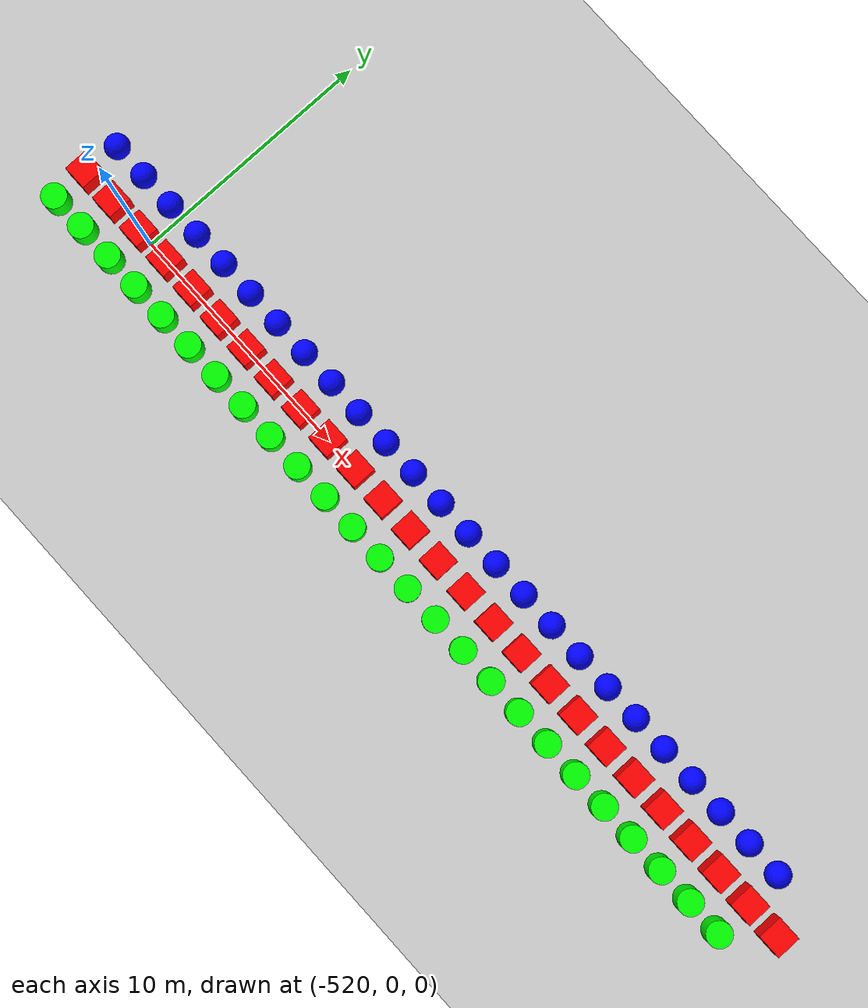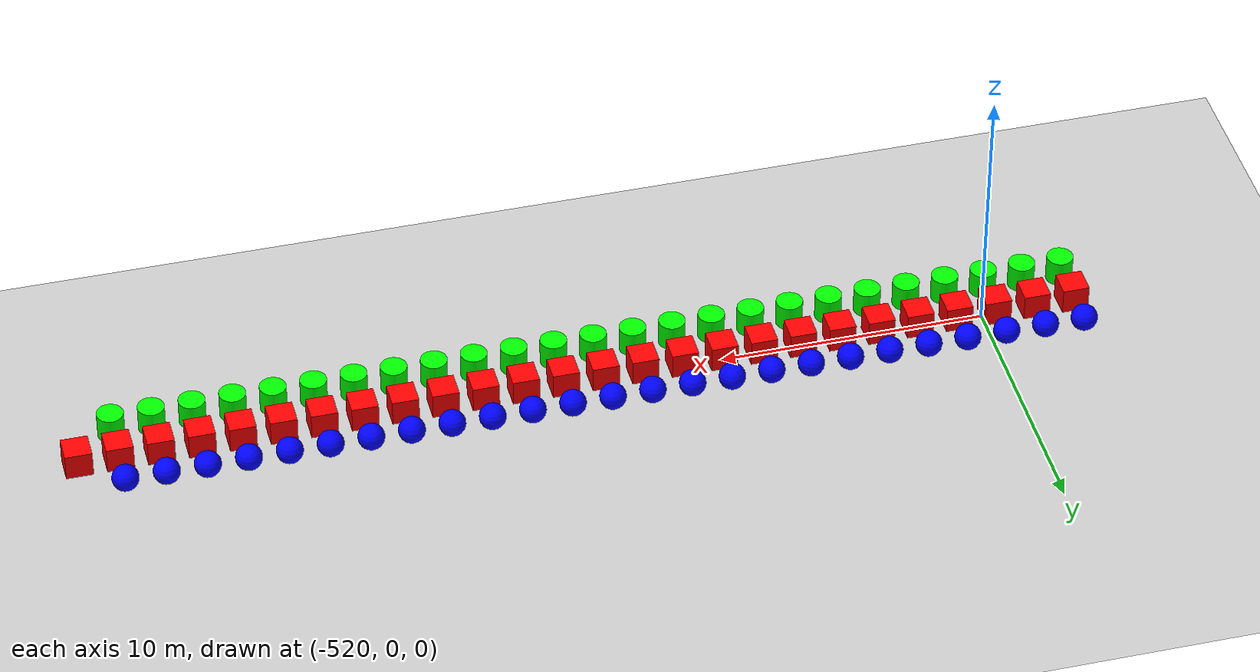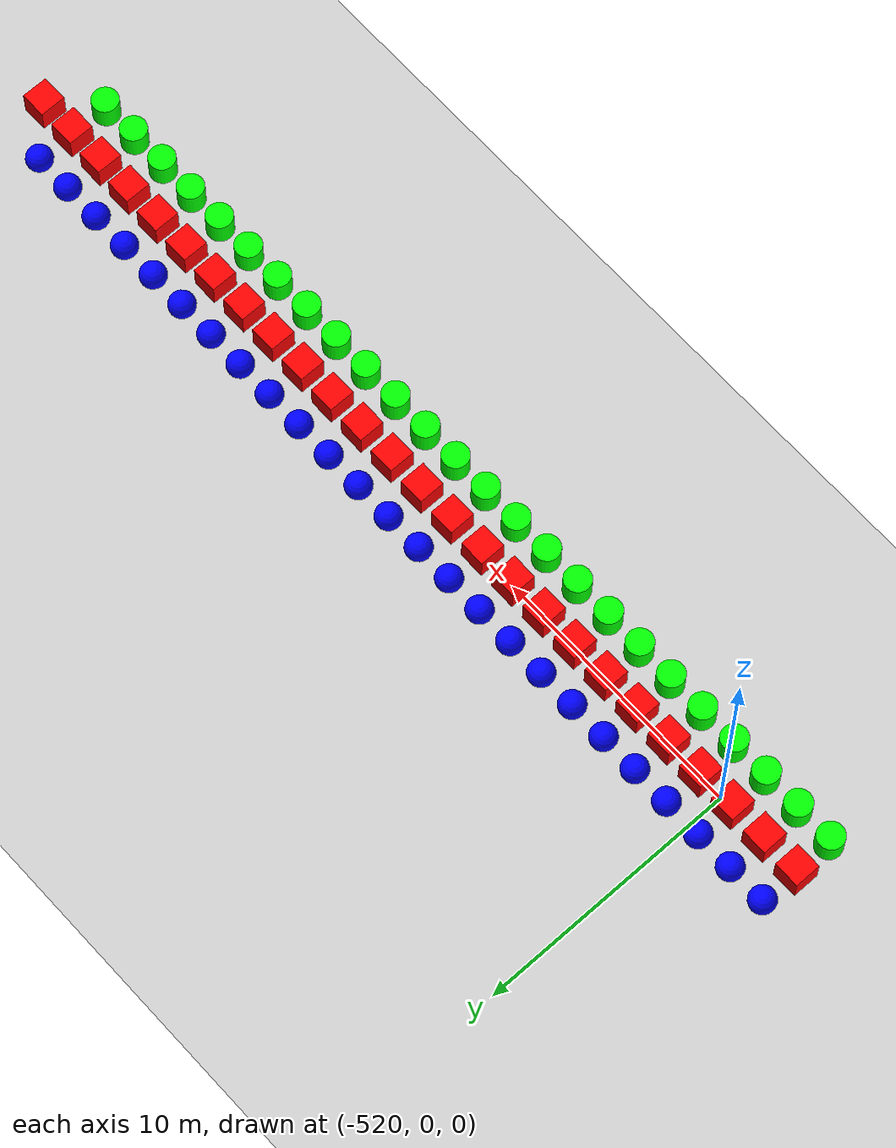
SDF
<sdf version="1.6">
 <world name="shapes">
  <model name="ground_plane">
   <static>true</static>
   <link name="link">
    <collision name="collision">
     <geometry><plane><normal>0 0 1</normal><size>100 100</size></plane></geometry>
    </collision>
    <visual name="visual">
     <geometry><plane><normal>0 0 1</normal><size>100 100</size></plane></geometry>
     <material>
      <ambient>0.8 0.8 0.8 1</ambient>
      <diffuse>0.8 0.8 0.8 1</diffuse>
      <specular>0.8 0.8 0.8 1</specular>
     </material>
    </visual>
   </link>
  </model>
  <model name="box_151">
   <pose>-523.5 0 0.5 0 0 0</pose>
   <link name="box_link">
    <inertial>
     <inertia><ixx>1</ixx><ixy>0</ixy><ixz>0</ixz><iyy>1</iyy><iyz>0</iyz><izz>1</izz></inertia>
     <mass>1.0</mass>
    </inertial>
    <collision name="box_collision"><geometry><box><size>1 1 1</size></box></geometry></collision>
    <visual name="box_visual">
     <geometry><box><size>1 1 1</size></box></geometry>
     <material><ambient>1 0 0 1</ambient><diffuse>1 0 0 1</diffuse><specular>1 0 0 1</specular></material>
    </visual>
   </link>
  </model>
  <model name="cylinder_151">
   <pose>-523.5 -1.5 0.5 0 0 0</pose>
   <link name="cylinder_link">
    <inertial>
     <inertia><ixx>2</ixx><ixy>0</ixy><ixz>0</ixz><iyy>2</iyy><iyz>0</iyz><izz>2</izz></inertia>
     <mass>2.0</mass>
    </inertial>
    <collision name="cylinder_collision">
     <geometry><cylinder><radius>0.5</radius><length>1.0</length></cylinder></geometry>
    </collision>
    <visual name="cylinder_visual">
     <geometry><cylinder><radius>0.5</radius><length>1.0</length></cylinder></geometry>
     <material><ambient>0 1 0 1</ambient><diffuse>0 1 0 1</diffuse><specular>0 1 0 1</specular></material>
    </visual>
   </link>
  </model>
  <model name="sphere_151">
   <pose>-523.5 1.5 0.5 0 0 0</pose>
   <link name="sphere_link">
    <inertial>
     <inertia><ixx>3</ixx><ixy>0</ixy><ixz>0</ixz><iyy>3</iyy><iyz>0</iyz><izz>3</izz></inertia>
     <mass>3.0</mass>
    </inertial>
    <collision name="sphere_collision"><geometry><sphere><radius>0.5</radius></sphere></geometry></collision>
    <visual name="sphere_visual">
     <geometry><sphere><radius>0.5</radius></sphere></geometry>
     <material><ambient>0 0 1 1</ambient><diffuse>0 0 1 1</diffuse><specular>0 0 1 1</specular></material>
    </visual>
   </link>
  </model>
  <model name="box_152">
   <pose>-522.0 0 0.5 0 0 0</pose>
   <link name="box_link">
    <inertial>
     <inertia><ixx>1</ixx><ixy>0</ixy><ixz>0</ixz><iyy>1</iyy><iyz>0</iyz><izz>1</izz></inertia>
     <mass>1.0</mass>
    </inertial>
    <collision name="box_collision"><geometry><box><size>1 1 1</size></box></geometry></collision>
    <visual name="box_visual">
     <geometry><box><size>1 1 1</size></box></geometry>
     <material><ambient>1 0 0 1</ambient><diffuse>1 0 0 1</diffuse><specular>1 0 0 1</specular></material>
    </visual>
   </link>
  </model>
  <model name="cylinder_152">
   <pose>-522.0 -1.5 0.5 0 0 0</pose>
   <link name="cylinder_link">
    <inertial>
     <inertia><ixx>2</ixx><ixy>0</ixy><ixz>0</ixz><iyy>2</iyy><iyz>0</iyz><izz>2</izz></inertia>
     <mass>2.0</mass>
    </inertial>
    <collision name="cylinder_collision">
     <geometry><cylinder><radius>0.5</radius><length>1.0</length></cylinder></geometry>
    </collision>
    <visual name="cylinder_visual">
     <geometry><cylinder><radius>0.5</radius><length>1.0</length></cylinder></geometry>
     <material><ambient>0 1 0 1</ambient><diffuse>0 1 0 1</diffuse><specular>0 1 0 1</specular></material>
    </visual>
   </link>
  </model>
  <model name="sphere_152">
   <pose>-522.0 1.5 0.5 0 0 0</pose>
   <link name="sphere_link">
    <inertial>
     <inertia><ixx>3</ixx><ixy>0</ixy><ixz>0</ixz><iyy>3</iyy><iyz>0</iyz><izz>3</izz></inertia>
     <mass>3.0</mass>
    </inertial>
    <collision name="sphere_collision"><geometry><sphere><radius>0.5</radius></sphere></geometry></collision>
    <visual name="sphere_visual">
     <geometry><sphere><radius>0.5</radius></sphere></geometry>
     <material><ambient>0 0 1 1</ambient><diffuse>0 0 1 1</diffuse><specular>0 0 1 1</specular></material>
    </visual>
   </link>
  </model>
  <model name="box_153">
   <pose>-520.5 0 0.5 0 0 0</pose>
   <link name="box_link">
    <inertial>
     <inertia><ixx>1</ixx><ixy>0</ixy><ixz>0</ixz><iyy>1</iyy><iyz>0</iyz><izz>1</izz></inertia>
     <mass>1.0</mass>
    </inertial>
    <collision name="box_collision"><geometry><box><size>1 1 1</size></box></geometry></collision>
    <visual name="box_visual">
     <geometry><box><size>1 1 1</size></box></geometry>
     <material><ambient>1 0 0 1</ambient><diffuse>1 0 0 1</diffuse><specular>1 0 0 1</specular></material>
    </visual>
   </link>
  </model>
  <model name="cylinder_153">
   <pose>-520.5 -1.5 0.5 0 0 0</pose>
   <link name="cylinder_link">
    <inertial>
     <inertia><ixx>2</ixx><ixy>0</ixy><ixz>0</ixz><iyy>2</iyy><iyz>0</iyz><izz>2</izz></inertia>
     <mass>2.0</mass>
    </inertial>
    <collision name="cylinder_collision">
     <geometry><cylinder><radius>0.5</radius><length>1.0</length></cylinder></geometry>
    </collision>
    <visual name="cylinder_visual">
     <geometry><cylinder><radius>0.5</radius><length>1.0</length></cylinder></geometry>
     <material><ambient>0 1 0 1</ambient><diffuse>0 1 0 1</diffuse><specular>0 1 0 1</specular></material>
    </visual>
   </link>
  </model>
  <model name="sphere_153">
   <pose>-520.5 1.5 0.5 0 0 0</pose>
   <link name="sphere_link">
    <inertial>
     <inertia><ixx>3</ixx><ixy>0</ixy><ixz>0</ixz><iyy>3</iyy><iyz>0</iyz><izz>3</izz></inertia>
     <mass>3.0</mass>
    </inertial>
    <collision name="sphere_collision"><geometry><sphere><radius>0.5</radius></sphere></geometry></collision>
    <visual name="sphere_visual">
     <geometry><sphere><radius>0.5</radius></sphere></geometry>
     <material><ambient>0 0 1 1</ambient><diffuse>0 0 1 1</diffuse><specular>0 0 1 1</specular></material>
    </visual>
   </link>
  </model>
  <model name="box_154">
   <pose>-519.0 0 0.5 0 0 0</pose>
   <link name="box_link">
    <inertial>
     <inertia><ixx>1</ixx><ixy>0</ixy><ixz>0</ixz><iyy>1</iyy><iyz>0</iyz><izz>1</izz></inertia>
     <mass>1.0</mass>
    </inertial>
    <collision name="box_collision"><geometry><box><size>1 1 1</size></box></geometry></collision>
    <visual name="box_visual">
     <geometry><box><size>1 1 1</size></box></geometry>
     <material><ambient>1 0 0 1</ambient><diffuse>1 0 0 1</diffuse><specular>1 0 0 1</specular></material>
    </visual>
   </link>
  </model>
  <model name="cylinder_154">
   <pose>-519.0 -1.5 0.5 0 0 0</pose>
   <link name="cylinder_link">
    <inertial>
     <inertia><ixx>2</ixx><ixy>0</ixy><ixz>0</ixz><iyy>2</iyy><iyz>0</iyz><izz>2</izz></inertia>
     <mass>2.0</mass>
    </inertial>
    <collision name="cylinder_collision">
     <geometry><cylinder><radius>0.5</radius><length>1.0</length></cylinder></geometry>
    </collision>
    <visual name="cylinder_visual">
     <geometry><cylinder><radius>0.5</radius><length>1.0</length></cylinder></geometry>
     <material><ambient>0 1 0 1</ambient><diffuse>0 1 0 1</diffuse><specular>0 1 0 1</specular></material>
    </visual>
   </link>
  </model>
  <model name="sphere_154">
   <pose>-519.0 1.5 0.5 0 0 0</pose>
   <link name="sphere_link">
    <inertial>
     <inertia><ixx>3</ixx><ixy>0</ixy><ixz>0</ixz><iyy>3</iyy><iyz>0</iyz><izz>3</izz></inertia>
     <mass>3.0</mass>
    </inertial>
    <collision name="sphere_collision"><geometry><sphere><radius>0.5</radius></sphere></geometry></collision>
    <visual name="sphere_visual">
     <geometry><sphere><radius>0.5</radius></sphere></geometry>
     <material><ambient>0 0 1 1</ambient><diffuse>0 0 1 1</diffuse><specular>0 0 1 1</specular></material>
    </visual>
   </link>
  </model>
  <model name="box_155">
   <pose>-517.5 0 0.5 0 0 0</pose>
   <link name="box_link">
    <inertial>
     <inertia><ixx>1</ixx><ixy>0</ixy><ixz>0</ixz><iyy>1</iyy><iyz>0</iyz><izz>1</izz></inertia>
     <mass>1.0</mass>
    </inertial>
    <collision name="box_collision"><geometry><box><size>1 1 1</size></box></geometry></collision>
    <visual name="box_visual">
     <geometry><box><size>1 1 1</size></box></geometry>
     <material><ambient>1 0 0 1</ambient><diffuse>1 0 0 1</diffuse><specular>1 0 0 1</specular></material>
    </visual>
   </link>
  </model>
  <model name="cylinder_155">
   <pose>-517.5 -1.5 0.5 0 0 0</pose>
   <link name="cylinder_link">
    <inertial>
     <inertia><ixx>2</ixx><ixy>0</ixy><ixz>0</ixz><iyy>2</iyy><iyz>0</iyz><izz>2</izz></inertia>
     <mass>2.0</mass>
    </inertial>
    <collision name="cylinder_collision">
     <geometry><cylinder><radius>0.5</radius><length>1.0</length></cylinder></geometry>
    </collision>
    <visual name="cylinder_visual">
     <geometry><cylinder><radius>0.5</radius><length>1.0</length></cylinder></geometry>
     <material><ambient>0 1 0 1</ambient><diffuse>0 1 0 1</diffuse><specular>0 1 0 1</specular></material>
    </visual>
   </link>
  </model>
  <model name="sphere_155">
   <pose>-517.5 1.5 0.5 0 0 0</pose>
   <link name="sphere_link">
    <inertial>
     <inertia><ixx>3</ixx><ixy>0</ixy><ixz>0</ixz><iyy>3</iyy><iyz>0</iyz><izz>3</izz></inertia>
     <mass>3.0</mass>
    </inertial>
    <collision name="sphere_collision"><geometry><sphere><radius>0.5</radius></sphere></geometry></collision>
    <visual name="sphere_visual">
     <geometry><sphere><radius>0.5</radius></sphere></geometry>
     <material><ambient>0 0 1 1</ambient><diffuse>0 0 1 1</diffuse><specular>0 0 1 1</specular></material>
    </visual>
   </link>
  </model>
  <model name="box_156">
   <pose>-516.0 0 0.5 0 0 0</pose>
   <link name="box_link">
    <inertial>
     <inertia><ixx>1</ixx><ixy>0</ixy><ixz>0</ixz><iyy>1</iyy><iyz>0</iyz><izz>1</izz></inertia>
     <mass>1.0</mass>
    </inertial>
    <collision name="box_collision"><geometry><box><size>1 1 1</size></box></geometry></collision>
    <visual name="box_visual">
     <geometry><box><size>1 1 1</size></box></geometry>
     <material><ambient>1 0 0 1</ambient><diffuse>1 0 0 1</diffuse><specular>1 0 0 1</specular></material>
    </visual>
   </link>
  </model>
  <model name="cylinder_156">
   <pose>-516.0 -1.5 0.5 0 0 0</pose>
   <link name="cylinder_link">
    <inertial>
     <inertia><ixx>2</ixx><ixy>0</ixy><ixz>0</ixz><iyy>2</iyy><iyz>0</iyz><izz>2</izz></inertia>
     <mass>2.0</mass>
    </inertial>
    <collision name="cylinder_collision">
     <geometry><cylinder><radius>0.5</radius><length>1.0</length></cylinder></geometry>
    </collision>
    <visual name="cylinder_visual">
     <geometry><cylinder><radius>0.5</radius><length>1.0</length></cylinder></geometry>
     <material><ambient>0 1 0 1</ambient><diffuse>0 1 0 1</diffuse><specular>0 1 0 1</specular></material>
    </visual>
   </link>
  </model>
  <model name="sphere_156">
   <pose>-516.0 1.5 0.5 0 0 0</pose>
   <link name="sphere_link">
    <inertial>
     <inertia><ixx>3</ixx><ixy>0</ixy><ixz>0</ixz><iyy>3</iyy><iyz>0</iyz><izz>3</izz></inertia>
     <mass>3.0</mass>
    </inertial>
    <collision name="sphere_collision"><geometry><sphere><radius>0.5</radius></sphere></geometry></collision>
    <visual name="sphere_visual">
     <geometry><sphere><radius>0.5</radius></sphere></geometry>
     <material><ambient>0 0 1 1</ambient><diffuse>0 0 1 1</diffuse><specular>0 0 1 1</specular></material>
    </visual>
   </link>
  </model>
  <model name="box_157">
   <pose>-514.5 0 0.5 0 0 0</pose>
   <link name="box_link">
    <inertial>
     <inertia><ixx>1</ixx><ixy>0</ixy><ixz>0</ixz><iyy>1</iyy><iyz>0</iyz><izz>1</izz></inertia>
     <mass>1.0</mass>
    </inertial>
    <collision name="box_collision"><geometry><box><size>1 1 1</size></box></geometry></collision>
    <visual name="box_visual">
     <geometry><box><size>1 1 1</size></box></geometry>
     <material><ambient>1 0 0 1</ambient><diffuse>1 0 0 1</diffuse><specular>1 0 0 1</specular></material>
    </visual>
   </link>
  </model>
  <model name="cylinder_157">
   <pose>-514.5 -1.5 0.5 0 0 0</pose>
   <link name="cylinder_link">
    <inertial>
     <inertia><ixx>2</ixx><ixy>0</ixy><ixz>0</ixz><iyy>2</iyy><iyz>0</iyz><izz>2</izz></inertia>
     <mass>2.0</mass>
    </inertial>
    <collision name="cylinder_collision">
     <geometry><cylinder><radius>0.5</radius><length>1.0</length></cylinder></geometry>
    </collision>
    <visual name="cylinder_visual">
     <geometry><cylinder><radius>0.5</radius><length>1.0</length></cylinder></geometry>
     <material><ambient>0 1 0 1</ambient><diffuse>0 1 0 1</diffuse><specular>0 1 0 1</specular></material>
    </visual>
   </link>
  </model>
  <model name="sphere_157">
   <pose>-514.5 1.5 0.5 0 0 0</pose>
   <link name="sphere_link">
    <inertial>
     <inertia><ixx>3</ixx><ixy>0</ixy><ixz>0</ixz><iyy>3</iyy><iyz>0</iyz><izz>3</izz></inertia>
     <mass>3.0</mass>
    </inertial>
    <collision name="sphere_collision"><geometry><sphere><radius>0.5</radius></sphere></geometry></collision>
    <visual name="sphere_visual">
     <geometry><sphere><radius>0.5</radius></sphere></geometry>
     <material><ambient>0 0 1 1</ambient><diffuse>0 0 1 1</diffuse><specular>0 0 1 1</specular></material>
    </visual>
   </link>
  </model>
  <model name="box_158">
   <pose>-513.0 0 0.5 0 0 0</pose>
   <link name="box_link">
    <inertial>
     <inertia><ixx>1</ixx><ixy>0</ixy><ixz>0</ixz><iyy>1</iyy><iyz>0</iyz><izz>1</izz></inertia>
     <mass>1.0</mass>
    </inertial>
    <collision name="box_collision"><geometry><box><size>1 1 1</size></box></geometry></collision>
    <visual name="box_visual">
     <geometry><box><size>1 1 1</size></box></geometry>
     <material><ambient>1 0 0 1</ambient><diffuse>1 0 0 1</diffuse><specular>1 0 0 1</specular></material>
    </visual>
   </link>
  </model>
  <model name="cylinder_158">
   <pose>-513.0 -1.5 0.5 0 0 0</pose>
   <link name="cylinder_link">
    <inertial>
     <inertia><ixx>2</ixx><ixy>0</ixy><ixz>0</ixz><iyy>2</iyy><iyz>0</iyz><izz>2</izz></inertia>
     <mass>2.0</mass>
    </inertial>
    <collision name="cylinder_collision">
     <geometry><cylinder><radius>0.5</radius><length>1.0</length></cylinder></geometry>
    </collision>
    <visual name="cylinder_visual">
     <geometry><cylinder><radius>0.5</radius><length>1.0</length></cylinder></geometry>
     <material><ambient>0 1 0 1</ambient><diffuse>0 1 0 1</diffuse><specular>0 1 0 1</specular></material>
    </visual>
   </link>
  </model>
  <model name="sphere_158">
   <pose>-513.0 1.5 0.5 0 0 0</pose>
   <link name="sphere_link">
    <inertial>
     <inertia><ixx>3</ixx><ixy>0</ixy><ixz>0</ixz><iyy>3</iyy><iyz>0</iyz><izz>3</izz></inertia>
     <mass>3.0</mass>
    </inertial>
    <collision name="sphere_collision"><geometry><sphere><radius>0.5</radius></sphere></geometry></collision>
    <visual name="sphere_visual">
     <geometry><sphere><radius>0.5</radius></sphere></geometry>
     <material><ambient>0 0 1 1</ambient><diffuse>0 0 1 1</diffuse><specular>0 0 1 1</specular></material>
    </visual>
   </link>
  </model>
  <model name="box_159">
   <pose>-511.5 0 0.5 0 0 0</pose>
   <link name="box_link">
    <inertial>
     <inertia><ixx>1</ixx><ixy>0</ixy><ixz>0</ixz><iyy>1</iyy><iyz>0</iyz><izz>1</izz></inertia>
     <mass>1.0</mass>
    </inertial>
    <collision name="box_collision"><geometry><box><size>1 1 1</size></box></geometry></collision>
    <visual name="box_visual">
     <geometry><box><size>1 1 1</size></box></geometry>
     <material><ambient>1 0 0 1</ambient><diffuse>1 0 0 1</diffuse><specular>1 0 0 1</specular></material>
    </visual>
   </link>
  </model>
  <model name="cylinder_159">
   <pose>-511.5 -1.5 0.5 0 0 0</pose>
   <link name="cylinder_link">
    <inertial>
     <inertia><ixx>2</ixx><ixy>0</ixy><ixz>0</ixz><iyy>2</iyy><iyz>0</iyz><izz>2</izz></inertia>
     <mass>2.0</mass>
    </inertial>
    <collision name="cylinder_collision">
     <geometry><cylinder><radius>0.5</radius><length>1.0</length></cylinder></geometry>
    </collision>
    <visual name="cylinder_visual">
     <geometry><cylinder><radius>0.5</radius><length>1.0</length></cylinder></geometry>
     <material><ambient>0 1 0 1</ambient><diffuse>0 1 0 1</diffuse><specular>0 1 0 1</specular></material>
    </visual>
   </link>
  </model>
  <model name="sphere_159">
   <pose>-511.5 1.5 0.5 0 0 0</pose>
   <link name="sphere_link">
    <inertial>
     <inertia><ixx>3</ixx><ixy>0</ixy><ixz>0</ixz><iyy>3</iyy><iyz>0</iyz><izz>3</izz></inertia>
     <mass>3.0</mass>
    </inertial>
    <collision name="sphere_collision"><geometry><sphere><radius>0.5</radius></sphere></geometry></collision>
    <visual name="sphere_visual">
     <geometry><sphere><radius>0.5</radius></sphere></geometry>
     <material><ambient>0 0 1 1</ambient><diffuse>0 0 1 1</diffuse><specular>0 0 1 1</specular></material>
    </visual>
   </link>
  </model>
  <model name="box_160">
   <pose>-510.0 0 0.5 0 0 0</pose>
   <link name="box_link">
    <inertial>
     <inertia><ixx>1</ixx><ixy>0</ixy><ixz>0</ixz><iyy>1</iyy><iyz>0</iyz><izz>1</izz></inertia>
     <mass>1.0</mass>
    </inertial>
    <collision name="box_collision"><geometry><box><size>1 1 1</size></box></geometry></collision>
    <visual name="box_visual">
     <geometry><box><size>1 1 1</size></box></geometry>
     <material><ambient>1 0 0 1</ambient><diffuse>1 0 0 1</diffuse><specular>1 0 0 1</specular></material>
    </visual>
   </link>
  </model>
  <model name="cylinder_160">
   <pose>-510.0 -1.5 0.5 0 0 0</pose>
   <link name="cylinder_link">
    <inertial>
     <inertia><ixx>2</ixx><ixy>0</ixy><ixz>0</ixz><iyy>2</iyy><iyz>0</iyz><izz>2</izz></inertia>
     <mass>2.0</mass>
    </inertial>
    <collision name="cylinder_collision">
     <geometry><cylinder><radius>0.5</radius><length>1.0</length></cylinder></geometry>
    </collision>
    <visual name="cylinder_visual">
     <geometry><cylinder><radius>0.5</radius><length>1.0</length></cylinder></geometry>
     <material><ambient>0 1 0 1</ambient><diffuse>0 1 0 1</diffuse><specular>0 1 0 1</specular></material>
    </visual>
   </link>
  </model>
  <model name="sphere_160">
   <pose>-510.0 1.5 0.5 0 0 0</pose>
   <link name="sphere_link">
    <inertial>
     <inertia><ixx>3</ixx><ixy>0</ixy><ixz>0</ixz><iyy>3</iyy><iyz>0</iyz><izz>3</izz></inertia>
     <mass>3.0</mass>
    </inertial>
    <collision name="sphere_collision"><geometry><sphere><radius>0.5</radius></sphere></geometry></collision>
    <visual name="sphere_visual">
     <geometry><sphere><radius>0.5</radius></sphere></geometry>
     <material><ambient>0 0 1 1</ambient><diffuse>0 0 1 1</diffuse><specular>0 0 1 1</specular></material>
    </visual>
   </link>
  </model>
  <model name="box_161">
   <pose>-508.5 0 0.5 0 0 0</pose>
   <link name="box_link">
    <inertial>
     <inertia><ixx>1</ixx><ixy>0</ixy><ixz>0</ixz><iyy>1</iyy><iyz>0</iyz><izz>1</izz></inertia>
     <mass>1.0</mass>
    </inertial>
    <collision name="box_collision"><geometry><box><size>1 1 1</size></box></geometry></collision>
    <visual name="box_visual">
     <geometry><box><size>1 1 1</size></box></geometry>
     <material><ambient>1 0 0 1</ambient><diffuse>1 0 0 1</diffuse><specular>1 0 0 1</specular></material>
    </visual>
   </link>
  </model>
  <model name="cylinder_161">
   <pose>-508.5 -1.5 0.5 0 0 0</pose>
   <link name="cylinder_link">
    <inertial>
     <inertia><ixx>2</ixx><ixy>0</ixy><ixz>0</ixz><iyy>2</iyy><iyz>0</iyz><izz>2</izz></inertia>
     <mass>2.0</mass>
    </inertial>
    <collision name="cylinder_collision">
     <geometry><cylinder><radius>0.5</radius><length>1.0</length></cylinder></geometry>
    </collision>
    <visual name="cylinder_visual">
     <geometry><cylinder><radius>0.5</radius><length>1.0</length></cylinder></geometry>
     <material><ambient>0 1 0 1</ambient><diffuse>0 1 0 1</diffuse><specular>0 1 0 1</specular></material>
    </visual>
   </link>
  </model>
  <model name="sphere_161">
   <pose>-508.5 1.5 0.5 0 0 0</pose>
   <link name="sphere_link">
    <inertial>
     <inertia><ixx>3</ixx><ixy>0</ixy><ixz>0</ixz><iyy>3</iyy><iyz>0</iyz><izz>3</izz></inertia>
     <mass>3.0</mass>
    </inertial>
    <collision name="sphere_collision"><geometry><sphere><radius>0.5</radius></sphere></geometry></collision>
    <visual name="sphere_visual">
     <geometry><sphere><radius>0.5</radius></sphere></geometry>
     <material><ambient>0 0 1 1</ambient><diffuse>0 0 1 1</diffuse><specular>0 0 1 1</specular></material>
    </visual>
   </link>
  </model>
  <model name="box_162">
   <pose>-507.0 0 0.5 0 0 0</pose>
   <link name="box_link">
    <inertial>
     <inertia><ixx>1</ixx><ixy>0</ixy><ixz>0</ixz><iyy>1</iyy><iyz>0</iyz><izz>1</izz></inertia>
     <mass>1.0</mass>
    </inertial>
    <collision name="box_collision"><geometry><box><size>1 1 1</size></box></geometry></collision>
    <visual name="box_visual">
     <geometry><box><size>1 1 1</size></box></geometry>
     <material><ambient>1 0 0 1</ambient><diffuse>1 0 0 1</diffuse><specular>1 0 0 1</specular></material>
    </visual>
   </link>
  </model>
  <model name="cylinder_162">
   <pose>-507.0 -1.5 0.5 0 0 0</pose>
   <link name="cylinder_link">
    <inertial>
     <inertia><ixx>2</ixx><ixy>0</ixy><ixz>0</ixz><iyy>2</iyy><iyz>0</iyz><izz>2</izz></inertia>
     <mass>2.0</mass>
    </inertial>
    <collision name="cylinder_collision">
     <geometry><cylinder><radius>0.5</radius><length>1.0</length></cylinder></geometry>
    </collision>
    <visual name="cylinder_visual">
     <geometry><cylinder><radius>0.5</radius><length>1.0</length></cylinder></geometry>
     <material><ambient>0 1 0 1</ambient><diffuse>0 1 0 1</diffuse><specular>0 1 0 1</specular></material>
    </visual>
   </link>
  </model>
  <model name="sphere_162">
   <pose>-507.0 1.5 0.5 0 0 0</pose>
   <link name="sphere_link">
    <inertial>
     <inertia><ixx>3</ixx><ixy>0</ixy><ixz>0</ixz><iyy>3</iyy><iyz>0</iyz><izz>3</izz></inertia>
     <mass>3.0</mass>
    </inertial>
    <collision name="sphere_collision"><geometry><sphere><radius>0.5</radius></sphere></geometry></collision>
    <visual name="sphere_visual">
     <geometry><sphere><radius>0.5</radius></sphere></geometry>
     <material><ambient>0 0 1 1</ambient><diffuse>0 0 1 1</diffuse><specular>0 0 1 1</specular></material>
    </visual>
   </link>
  </model>
  <model name="box_163">
   <pose>-505.5 0 0.5 0 0 0</pose>
   <link name="box_link">
    <inertial>
     <inertia><ixx>1</ixx><ixy>0</ixy><ixz>0</ixz><iyy>1</iyy><iyz>0</iyz><izz>1</izz></inertia>
     <mass>1.0</mass>
    </inertial>
    <collision name="box_collision"><geometry><box><size>1 1 1</size></box></geometry></collision>
    <visual name="box_visual">
     <geometry><box><size>1 1 1</size></box></geometry>
     <material><ambient>1 0 0 1</ambient><diffuse>1 0 0 1</diffuse><specular>1 0 0 1</specular></material>
    </visual>
   </link>
  </model>
  <model name="cylinder_163">
   <pose>-505.5 -1.5 0.5 0 0 0</pose>
   <link name="cylinder_link">
    <inertial>
     <inertia><ixx>2</ixx><ixy>0</ixy><ixz>0</ixz><iyy>2</iyy><iyz>0</iyz><izz>2</izz></inertia>
     <mass>2.0</mass>
    </inertial>
    <collision name="cylinder_collision">
     <geometry><cylinder><radius>0.5</radius><length>1.0</length></cylinder></geometry>
    </collision>
    <visual name="cylinder_visual">
     <geometry><cylinder><radius>0.5</radius><length>1.0</length></cylinder></geometry>
     <material><ambient>0 1 0 1</ambient><diffuse>0 1 0 1</diffuse><specular>0 1 0 1</specular></material>
    </visual>
   </link>
  </model>
  <model name="sphere_163">
   <pose>-505.5 1.5 0.5 0 0 0</pose>
   <link name="sphere_link">
    <inertial>
     <inertia><ixx>3</ixx><ixy>0</ixy><ixz>0</ixz><iyy>3</iyy><iyz>0</iyz><izz>3</izz></inertia>
     <mass>3.0</mass>
    </inertial>
    <collision name="sphere_collision"><geometry><sphere><radius>0.5</radius></sphere></geometry></collision>
    <visual name="sphere_visual">
     <geometry><sphere><radius>0.5</radius></sphere></geometry>
     <material><ambient>0 0 1 1</ambient><diffuse>0 0 1 1</diffuse><specular>0 0 1 1</specular></material>
    </visual>
   </link>
  </model>
  <model name="box_164">
   <pose>-504.0 0 0.5 0 0 0</pose>
   <link name="box_link">
    <inertial>
     <inertia><ixx>1</ixx><ixy>0</ixy><ixz>0</ixz><iyy>1</iyy><iyz>0</iyz><izz>1</izz></inertia>
     <mass>1.0</mass>
    </inertial>
    <collision name="box_collision"><geometry><box><size>1 1 1</size></box></geometry></collision>
    <visual name="box_visual">
     <geometry><box><size>1 1 1</size></box></geometry>
     <material><ambient>1 0 0 1</ambient><diffuse>1 0 0 1</diffuse><specular>1 0 0 1</specular></material>
    </visual>
   </link>
  </model>
  <model name="cylinder_164">
   <pose>-504.0 -1.5 0.5 0 0 0</pose>
   <link name="cylinder_link">
    <inertial>
     <inertia><ixx>2</ixx><ixy>0</ixy><ixz>0</ixz><iyy>2</iyy><iyz>0</iyz><izz>2</izz></inertia>
     <mass>2.0</mass>
    </inertial>
    <collision name="cylinder_collision">
     <geometry><cylinder><radius>0.5</radius><length>1.0</length></cylinder></geometry>
    </collision>
    <visual name="cylinder_visual">
     <geometry><cylinder><radius>0.5</radius><length>1.0</length></cylinder></geometry>
     <material><ambient>0 1 0 1</ambient><diffuse>0 1 0 1</diffuse><specular>0 1 0 1</specular></material>
    </visual>
   </link>
  </model>
  <model name="sphere_164">
   <pose>-504.0 1.5 0.5 0 0 0</pose>
   <link name="sphere_link">
    <inertial>
     <inertia><ixx>3</ixx><ixy>0</ixy><ixz>0</ixz><iyy>3</iyy><iyz>0</iyz><izz>3</izz></inertia>
     <mass>3.0</mass>
    </inertial>
    <collision name="sphere_collision"><geometry><sphere><radius>0.5</radius></sphere></geometry></collision>
    <visual name="sphere_visual">
     <geometry><sphere><radius>0.5</radius></sphere></geometry>
     <material><ambient>0 0 1 1</ambient><diffuse>0 0 1 1</diffuse><specular>0 0 1 1</specular></material>
    </visual>
   </link>
  </model>
  <model name="box_165">
   <pose>-502.5 0 0.5 0 0 0</pose>
   <link name="box_link">
    <inertial>
     <inertia><ixx>1</ixx><ixy>0</ixy><ixz>0</ixz><iyy>1</iyy><iyz>0</iyz><izz>1</izz></inertia>
     <mass>1.0</mass>
    </inertial>
    <collision name="box_collision"><geometry><box><size>1 1 1</size></box></geometry></collision>
    <visual name="box_visual">
     <geometry><box><size>1 1 1</size></box></geometry>
     <material><ambient>1 0 0 1</ambient><diffuse>1 0 0 1</diffuse><specular>1 0 0 1</specular></material>
    </visual>
   </link>
  </model>
  <model name="cylinder_165">
   <pose>-502.5 -1.5 0.5 0 0 0</pose>
   <link name="cylinder_link">
    <inertial>
     <inertia><ixx>2</ixx><ixy>0</ixy><ixz>0</ixz><iyy>2</iyy><iyz>0</iyz><izz>2</izz></inertia>
     <mass>2.0</mass>
    </inertial>
    <collision name="cylinder_collision">
     <geometry><cylinder><radius>0.5</radius><length>1.0</length></cylinder></geometry>
    </collision>
    <visual name="cylinder_visual">
     <geometry><cylinder><radius>0.5</radius><length>1.0</length></cylinder></geometry>
     <material><ambient>0 1 0 1</ambient><diffuse>0 1 0 1</diffuse><specular>0 1 0 1</specular></material>
    </visual>
   </link>
  </model>
  <model name="sphere_165">
   <pose>-502.5 1.5 0.5 0 0 0</pose>
   <link name="sphere_link">
    <inertial>
     <inertia><ixx>3</ixx><ixy>0</ixy><ixz>0</ixz><iyy>3</iyy><iyz>0</iyz><izz>3</izz></inertia>
     <mass>3.0</mass>
    </inertial>
    <collision name="sphere_collision"><geometry><sphere><radius>0.5</radius></sphere></geometry></collision>
    <visual name="sphere_visual">
     <geometry><sphere><radius>0.5</radius></sphere></geometry>
     <material><ambient>0 0 1 1</ambient><diffuse>0 0 1 1</diffuse><specular>0 0 1 1</specular></material>
    </visual>
   </link>
  </model>
  <model name="box_166">
   <pose>-501.0 0 0.5 0 0 0</pose>
   <link name="box_link">
    <inertial>
     <inertia><ixx>1</ixx><ixy>0</ixy><ixz>0</ixz><iyy>1</iyy><iyz>0</iyz><izz>1</izz></inertia>
     <mass>1.0</mass>
    </inertial>
    <collision name="box_collision"><geometry><box><size>1 1 1</size></box></geometry></collision>
    <visual name="box_visual">
     <geometry><box><size>1 1 1</size></box></geometry>
     <material><ambient>1 0 0 1</ambient><diffuse>1 0 0 1</diffuse><specular>1 0 0 1</specular></material>
    </visual>
   </link>
  </model>
  <model name="cylinder_166">
   <pose>-501.0 -1.5 0.5 0 0 0</pose>
   <link name="cylinder_link">
    <inertial>
     <inertia><ixx>2</ixx><ixy>0</ixy><ixz>0</ixz><iyy>2</iyy><iyz>0</iyz><izz>2</izz></inertia>
     <mass>2.0</mass>
    </inertial>
    <collision name="cylinder_collision">
     <geometry><cylinder><radius>0.5</radius><length>1.0</length></cylinder></geometry>
    </collision>
    <visual name="cylinder_visual">
     <geometry><cylinder><radius>0.5</radius><length>1.0</length></cylinder></geometry>
     <material><ambient>0 1 0 1</ambient><diffuse>0 1 0 1</diffuse><specular>0 1 0 1</specular></material>
    </visual>
   </link>
  </model>
  <model name="sphere_166">
   <pose>-501.0 1.5 0.5 0 0 0</pose>
   <link name="sphere_link">
    <inertial>
     <inertia><ixx>3</ixx><ixy>0</ixy><ixz>0</ixz><iyy>3</iyy><iyz>0</iyz><izz>3</izz></inertia>
     <mass>3.0</mass>
    </inertial>
    <collision name="sphere_collision"><geometry><sphere><radius>0.5</radius></sphere></geometry></collision>
    <visual name="sphere_visual">
     <geometry><sphere><radius>0.5</radius></sphere></geometry>
     <material><ambient>0 0 1 1</ambient><diffuse>0 0 1 1</diffuse><specular>0 0 1 1</specular></material>
    </visual>
   </link>
  </model>
  <model name="box_167">
   <pose>-499.5 0 0.5 0 0 0</pose>
   <link name="box_link">
    <inertial>
     <inertia><ixx>1</ixx><ixy>0</ixy><ixz>0</ixz><iyy>1</iyy><iyz>0</iyz><izz>1</izz></inertia>
     <mass>1.0</mass>
    </inertial>
    <collision name="box_collision"><geometry><box><size>1 1 1</size></box></geometry></collision>
    <visual name="box_visual">
     <geometry><box><size>1 1 1</size></box></geometry>
     <material><ambient>1 0 0 1</ambient><diffuse>1 0 0 1</diffuse><specular>1 0 0 1</specular></material>
    </visual>
   </link>
  </model>
  <model name="cylinder_167">
   <pose>-499.5 -1.5 0.5 0 0 0</pose>
   <link name="cylinder_link">
    <inertial>
     <inertia><ixx>2</ixx><ixy>0</ixy><ixz>0</ixz><iyy>2</iyy><iyz>0</iyz><izz>2</izz></inertia>
     <mass>2.0</mass>
    </inertial>
    <collision name="cylinder_collision">
     <geometry><cylinder><radius>0.5</radius><length>1.0</length></cylinder></geometry>
    </collision>
    <visual name="cylinder_visual">
     <geometry><cylinder><radius>0.5</radius><length>1.0</length></cylinder></geometry>
     <material><ambient>0 1 0 1</ambient><diffuse>0 1 0 1</diffuse><specular>0 1 0 1</specular></material>
    </visual>
   </link>
  </model>
  <model name="sphere_167">
   <pose>-499.5 1.5 0.5 0 0 0</pose>
   <link name="sphere_link">
    <inertial>
     <inertia><ixx>3</ixx><ixy>0</ixy><ixz>0</ixz><iyy>3</iyy><iyz>0</iyz><izz>3</izz></inertia>
     <mass>3.0</mass>
    </inertial>
    <collision name="sphere_collision"><geometry><sphere><radius>0.5</radius></sphere></geometry></collision>
    <visual name="sphere_visual">
     <geometry><sphere><radius>0.5</radius></sphere></geometry>
     <material><ambient>0 0 1 1</ambient><diffuse>0 0 1 1</diffuse><specular>0 0 1 1</specular></material>
    </visual>
   </link>
  </model>
  <model name="box_168">
   <pose>-498.0 0 0.5 0 0 0</pose>
   <link name="box_link">
    <inertial>
     <inertia><ixx>1</ixx><ixy>0</ixy><ixz>0</ixz><iyy>1</iyy><iyz>0</iyz><izz>1</izz></inertia>
     <mass>1.0</mass>
    </inertial>
    <collision name="box_collision"><geometry><box><size>1 1 1</size></box></geometry></collision>
    <visual name="box_visual">
     <geometry><box><size>1 1 1</size></box></geometry>
     <material><ambient>1 0 0 1</ambient><diffuse>1 0 0 1</diffuse><specular>1 0 0 1</specular></material>
    </visual>
   </link>
  </model>
  <model name="cylinder_168">
   <pose>-498.0 -1.5 0.5 0 0 0</pose>
   <link name="cylinder_link">
    <inertial>
     <inertia><ixx>2</ixx><ixy>0</ixy><ixz>0</ixz><iyy>2</iyy><iyz>0</iyz><izz>2</izz></inertia>
     <mass>2.0</mass>
    </inertial>
    <collision name="cylinder_collision">
     <geometry><cylinder><radius>0.5</radius><length>1.0</length></cylinder></geometry>
    </collision>
    <visual name="cylinder_visual">
     <geometry><cylinder><radius>0.5</radius><length>1.0</length></cylinder></geometry>
     <material><ambient>0 1 0 1</ambient><diffuse>0 1 0 1</diffuse><specular>0 1 0 1</specular></material>
    </visual>
   </link>
  </model>
  <model name="sphere_168">
   <pose>-498.0 1.5 0.5 0 0 0</pose>
   <link name="sphere_link">
    <inertial>
     <inertia><ixx>3</ixx><ixy>0</ixy><ixz>0</ixz><iyy>3</iyy><iyz>0</iyz><izz>3</izz></inertia>
     <mass>3.0</mass>
    </inertial>
    <collision name="sphere_collision"><geometry><sphere><radius>0.5</radius></sphere></geometry></collision>
    <visual name="sphere_visual">
     <geometry><sphere><radius>0.5</radius></sphere></geometry>
     <material><ambient>0 0 1 1</ambient><diffuse>0 0 1 1</diffuse><specular>0 0 1 1</specular></material>
    </visual>
   </link>
  </model>
  <model name="box_169">
   <pose>-496.5 0 0.5 0 0 0</pose>
   <link name="box_link">
    <inertial>
     <inertia><ixx>1</ixx><ixy>0</ixy><ixz>0</ixz><iyy>1</iyy><iyz>0</iyz><izz>1</izz></inertia>
     <mass>1.0</mass>
    </inertial>
    <collision name="box_collision"><geometry><box><size>1 1 1</size></box></geometry></collision>
    <visual name="box_visual">
     <geometry><box><size>1 1 1</size></box></geometry>
     <material><ambient>1 0 0 1</ambient><diffuse>1 0 0 1</diffuse><specular>1 0 0 1</specular></material>
    </visual>
   </link>
  </model>
  <model name="cylinder_169">
   <pose>-496.5 -1.5 0.5 0 0 0</pose>
   <link name="cylinder_link">
    <inertial>
     <inertia><ixx>2</ixx><ixy>0</ixy><ixz>0</ixz><iyy>2</iyy><iyz>0</iyz><izz>2</izz></inertia>
     <mass>2.0</mass>
    </inertial>
    <collision name="cylinder_collision">
     <geometry><cylinder><radius>0.5</radius><length>1.0</length></cylinder></geometry>
    </collision>
    <visual name="cylinder_visual">
     <geometry><cylinder><radius>0.5</radius><length>1.0</length></cylinder></geometry>
     <material><ambient>0 1 0 1</ambient><diffuse>0 1 0 1</diffuse><specular>0 1 0 1</specular></material>
    </visual>
   </link>
  </model>
  <model name="sphere_169">
   <pose>-496.5 1.5 0.5 0 0 0</pose>
   <link name="sphere_link">
    <inertial>
     <inertia><ixx>3</ixx><ixy>0</ixy><ixz>0</ixz><iyy>3</iyy><iyz>0</iyz><izz>3</izz></inertia>
     <mass>3.0</mass>
    </inertial>
    <collision name="sphere_collision"><geometry><sphere><radius>0.5</radius></sphere></geometry></collision>
    <visual name="sphere_visual">
     <geometry><sphere><radius>0.5</radius></sphere></geometry>
     <material><ambient>0 0 1 1</ambient><diffuse>0 0 1 1</diffuse><specular>0 0 1 1</specular></material>
    </visual>
   </link>
  </model>
  <model name="box_170">
   <pose>-495.0 0 0.5 0 0 0</pose>
   <link name="box_link">
    <inertial>
     <inertia><ixx>1</ixx><ixy>0</ixy><ixz>0</ixz><iyy>1</iyy><iyz>0</iyz><izz>1</izz></inertia>
     <mass>1.0</mass>
    </inertial>
    <collision name="box_collision"><geometry><box><size>1 1 1</size></box></geometry></collision>
    <visual name="box_visual">
     <geometry><box><size>1 1 1</size></box></geometry>
     <material><ambient>1 0 0 1</ambient><diffuse>1 0 0 1</diffuse><specular>1 0 0 1</specular></material>
    </visual>
   </link>
  </model>
  <model name="cylinder_170">
   <pose>-495.0 -1.5 0.5 0 0 0</pose>
   <link name="cylinder_link">
    <inertial>
     <inertia><ixx>2</ixx><ixy>0</ixy><ixz>0</ixz><iyy>2</iyy><iyz>0</iyz><izz>2</izz></inertia>
     <mass>2.0</mass>
    </inertial>
    <collision name="cylinder_collision">
     <geometry><cylinder><radius>0.5</radius><length>1.0</length></cylinder></geometry>
    </collision>
    <visual name="cylinder_visual">
     <geometry><cylinder><radius>0.5</radius><length>1.0</length></cylinder></geometry>
     <material><ambient>0 1 0 1</ambient><diffuse>0 1 0 1</diffuse><specular>0 1 0 1</specular></material>
    </visual>
   </link>
  </model>
  <model name="sphere_170">
   <pose>-495.0 1.5 0.5 0 0 0</pose>
   <link name="sphere_link">
    <inertial>
     <inertia><ixx>3</ixx><ixy>0</ixy><ixz>0</ixz><iyy>3</iyy><iyz>0</iyz><izz>3</izz></inertia>
     <mass>3.0</mass>
    </inertial>
    <collision name="sphere_collision"><geometry><sphere><radius>0.5</radius></sphere></geometry></collision>
    <visual name="sphere_visual">
     <geometry><sphere><radius>0.5</radius></sphere></geometry>
     <material><ambient>0 0 1 1</ambient><diffuse>0 0 1 1</diffuse><specular>0 0 1 1</specular></material>
    </visual>
   </link>
  </model>
  <model name="box_171">
   <pose>-493.5 0 0.5 0 0 0</pose>
   <link name="box_link">
    <inertial>
     <inertia><ixx>1</ixx><ixy>0</ixy><ixz>0</ixz><iyy>1</iyy><iyz>0</iyz><izz>1</izz></inertia>
     <mass>1.0</mass>
    </inertial>
    <collision name="box_collision"><geometry><box><size>1 1 1</size></box></geometry></collision>
    <visual name="box_visual">
     <geometry><box><size>1 1 1</size></box></geometry>
     <material><ambient>1 0 0 1</ambient><diffuse>1 0 0 1</diffuse><specular>1 0 0 1</specular></material>
    </visual>
   </link>
  </model>
  <model name="cylinder_171">
   <pose>-493.5 -1.5 0.5 0 0 0</pose>
   <link name="cylinder_link">
    <inertial>
     <inertia><ixx>2</ixx><ixy>0</ixy><ixz>0</ixz><iyy>2</iyy><iyz>0</iyz><izz>2</izz></inertia>
     <mass>2.0</mass>
    </inertial>
    <collision name="cylinder_collision">
     <geometry><cylinder><radius>0.5</radius><length>1.0</length></cylinder></geometry>
    </collision>
    <visual name="cylinder_visual">
     <geometry><cylinder><radius>0.5</radius><length>1.0</length></cylinder></geometry>
     <material><ambient>0 1 0 1</ambient><diffuse>0 1 0 1</diffuse><specular>0 1 0 1</specular></material>
    </visual>
   </link>
  </model>
  <model name="sphere_171">
   <pose>-493.5 1.5 0.5 0 0 0</pose>
   <link name="sphere_link">
    <inertial>
     <inertia><ixx>3</ixx><ixy>0</ixy><ixz>0</ixz><iyy>3</iyy><iyz>0</iyz><izz>3</izz></inertia>
     <mass>3.0</mass>
    </inertial>
    <collision name="sphere_collision"><geometry><sphere><radius>0.5</radius></sphere></geometry></collision>
    <visual name="sphere_visual">
     <geometry><sphere><radius>0.5</radius></sphere></geometry>
     <material><ambient>0 0 1 1</ambient><diffuse>0 0 1 1</diffuse><specular>0 0 1 1</specular></material>
    </visual>
   </link>
  </model>
  <model name="box_172">
   <pose>-492.0 0 0.5 0 0 0</pose>
   <link name="box_link">
    <inertial>
     <inertia><ixx>1</ixx><ixy>0</ixy><ixz>0</ixz><iyy>1</iyy><iyz>0</iyz><izz>1</izz></inertia>
     <mass>1.0</mass>
    </inertial>
    <collision name="box_collision"><geometry><box><size>1 1 1</size></box></geometry></collision>
    <visual name="box_visual">
     <geometry><box><size>1 1 1</size></box></geometry>
     <material><ambient>1 0 0 1</ambient><diffuse>1 0 0 1</diffuse><specular>1 0 0 1</specular></material>
    </visual>
   </link>
  </model>
  <model name="cylinder_172">
   <pose>-492.0 -1.5 0.5 0 0 0</pose>
   <link name="cylinder_link">
    <inertial>
     <inertia><ixx>2</ixx><ixy>0</ixy><ixz>0</ixz><iyy>2</iyy><iyz>0</iyz><izz>2</izz></inertia>
     <mass>2.0</mass>
    </inertial>
    <collision name="cylinder_collision">
     <geometry><cylinder><radius>0.5</radius><length>1.0</length></cylinder></geometry>
    </collision>
    <visual name="cylinder_visual">
     <geometry><cylinder><radius>0.5</radius><length>1.0</length></cylinder></geometry>
     <material><ambient>0 1 0 1</ambient><diffuse>0 1 0 1</diffuse><specular>0 1 0 1</specular></material>
    </visual>
   </link>
  </model>
  <model name="sphere_172">
   <pose>-492.0 1.5 0.5 0 0 0</pose>
   <link name="sphere_link">
    <inertial>
     <inertia><ixx>3</ixx><ixy>0</ixy><ixz>0</ixz><iyy>3</iyy><iyz>0</iyz><izz>3</izz></inertia>
     <mass>3.0</mass>
    </inertial>
    <collision name="sphere_collision"><geometry><sphere><radius>0.5</radius></sphere></geometry></collision>
    <visual name="sphere_visual">
     <geometry><sphere><radius>0.5</radius></sphere></geometry>
     <material><ambient>0 0 1 1</ambient><diffuse>0 0 1 1</diffuse><specular>0 0 1 1</specular></material>
    </visual>
   </link>
  </model>
  <model name="box_173">
   <pose>-490.5 0 0.5 0 0 0</pose>
   <link name="box_link">
    <inertial>
     <inertia><ixx>1</ixx><ixy>0</ixy><ixz>0</ixz><iyy>1</iyy><iyz>0</iyz><izz>1</izz></inertia>
     <mass>1.0</mass>
    </inertial>
    <collision name="box_collision"><geometry><box><size>1 1 1</size></box></geometry></collision>
    <visual name="box_visual">
     <geometry><box><size>1 1 1</size></box></geometry>
     <material><ambient>1 0 0 1</ambient><diffuse>1 0 0 1</diffuse><specular>1 0 0 1</specular></material>
    </visual>
   </link>
  </model>
  <model name="cylinder_173">
   <pose>-490.5 -1.5 0.5 0 0 0</pose>
   <link name="cylinder_link">
    <inertial>
     <inertia><ixx>2</ixx><ixy>0</ixy><ixz>0</ixz><iyy>2</iyy><iyz>0</iyz><izz>2</izz></inertia>
     <mass>2.0</mass>
    </inertial>
    <collision name="cylinder_collision">
     <geometry><cylinder><radius>0.5</radius><length>1.0</length></cylinder></geometry>
    </collision>
    <visual name="cylinder_visual">
     <geometry><cylinder><radius>0.5</radius><length>1.0</length></cylinder></geometry>
     <material><ambient>0 1 0 1</ambient><diffuse>0 1 0 1</diffuse><specular>0 1 0 1</specular></material>
    </visual>
   </link>
  </model>
  <model name="sphere_173">
   <pose>-490.5 1.5 0.5 0 0 0</pose>
   <link name="sphere_link">
    <inertial>
     <inertia><ixx>3</ixx><ixy>0</ixy><ixz>0</ixz><iyy>3</iyy><iyz>0</iyz><izz>3</izz></inertia>
     <mass>3.0</mass>
    </inertial>
    <collision name="sphere_collision"><geometry><sphere><radius>0.5</radius></sphere></geometry></collision>
    <visual name="sphere_visual">
     <geometry><sphere><radius>0.5</radius></sphere></geometry>
     <material><ambient>0 0 1 1</ambient><diffuse>0 0 1 1</diffuse><specular>0 0 1 1</specular></material>
    </visual>
   </link>
  </model>
  <model name="box_174">
   <pose>-489.0 0 0.5 0 0 0</pose>
   <link name="box_link">
    <inertial>
     <inertia><ixx>1</ixx><ixy>0</ixy><ixz>0</ixz><iyy>1</iyy><iyz>0</iyz><izz>1</izz></inertia>
     <mass>1.0</mass>
    </inertial>
    <collision name="box_collision"><geometry><box><size>1 1 1</size></box></geometry></collision>
    <visual name="box_visual">
     <geometry><box><size>1 1 1</size></box></geometry>
     <material><ambient>1 0 0 1</ambient><diffuse>1 0 0 1</diffuse><specular>1 0 0 1</specular></material>
    </visual>
   </link>
  </model>
  <model name="cylinder_174">
   <pose>-489.0 -1.5 0.5 0 0 0</pose>
   <link name="cylinder_link">
    <inertial>
     <inertia><ixx>2</ixx><ixy>0</ixy><ixz>0</ixz><iyy>2</iyy><iyz>0</iyz><izz>2</izz></inertia>
     <mass>2.0</mass>
    </inertial>
    <collision name="cylinder_collision">
     <geometry><cylinder><radius>0.5</radius><length>1.0</length></cylinder></geometry>
    </collision>
    <visual name="cylinder_visual">
     <geometry><cylinder><radius>0.5</radius><length>1.0</length></cylinder></geometry>
     <material><ambient>0 1 0 1</ambient><diffuse>0 1 0 1</diffuse><specular>0 1 0 1</specular></material>
    </visual>
   </link>
  </model>
  <model name="sphere_174">
   <pose>-489.0 1.5 0.5 0 0 0</pose>
   <link name="sphere_link">
    <inertial>
     <inertia><ixx>3</ixx><ixy>0</ixy><ixz>0</ixz><iyy>3</iyy><iyz>0</iyz><izz>3</izz></inertia>
     <mass>3.0</mass>
    </inertial>
    <collision name="sphere_collision"><geometry><sphere><radius>0.5</radius></sphere></geometry></collision>
    <visual name="sphere_visual">
     <geometry><sphere><radius>0.5</radius></sphere></geometry>
     <material><ambient>0 0 1 1</ambient><diffuse>0 0 1 1</diffuse><specular>0 0 1 1</specular></material>
    </visual>
   </link>
  </model>
  <model name="box_175">
   <pose>-487.5 0 0.5 0 0 0</pose>
   <link name="box_link">
    <inertial>
     <inertia><ixx>1</ixx><ixy>0</ixy><ixz>0</ixz><iyy>1</iyy><iyz>0</iyz><izz>1</izz></inertia>
     <mass>1.0</mass>
    </inertial>
    <collision name="box_collision"><geometry><box><size>1 1 1</size></box></geometry></collision>
    <visual name="box_visual">
     <geometry><box><size>1 1 1</size></box></geometry>
     <material><ambient>1 0 0 1</ambient><diffuse>1 0 0 1</diffuse><specular>1 0 0 1</specular></material>
    </visual>
   </link>
  </model>
  <model name="cylinder_175">
   <pose>-487.5 -1.5 0.5 0 0 0</pose>
   <link name="cylinder_link">
    <inertial>
     <inertia><ixx>2</ixx><ixy>0</ixy><ixz>0</ixz><iyy>2</iyy><iyz>0</iyz><izz>2</izz></inertia>
     <mass>2.0</mass>
    </inertial>
    <collision name="cylinder_collision">
     <geometry><cylinder><radius>0.5</radius><length>1.0</length></cylinder></geometry>
    </collision>
    <visual name="cylinder_visual">
     <geometry><cylinder><radius>0.5</radius><length>1.0</length></cylinder></geometry>
     <material><ambient>0 1 0 1</ambient><diffuse>0 1 0 1</diffuse><specular>0 1 0 1</specular></material>
    </visual>
   </link>
  </model>
  <model name="sphere_175">
   <pose>-487.5 1.5 0.5 0 0 0</pose>
   <link name="sphere_link">
    <inertial>
     <inertia><ixx>3</ixx><ixy>0</ixy><ixz>0</ixz><iyy>3</iyy><iyz>0</iyz><izz>3</izz></inertia>
     <mass>3.0</mass>
    </inertial>
    <collision name="sphere_collision"><geometry><sphere><radius>0.5</radius></sphere></geometry></collision>
    <visual name="sphere_visual">
     <geometry><sphere><radius>0.5</radius></sphere></geometry>
     <material><ambient>0 0 1 1</ambient><diffuse>0 0 1 1</diffuse><specular>0 0 1 1</specular></material>
    </visual>
   </link>
  </model>
  <model name="box_176">
   <pose>-486.0 0 0.5 0 0 0</pose>
   <link name="box_link">
    <inertial>
     <inertia><ixx>1</ixx><ixy>0</ixy><ixz>0</ixz><iyy>1</iyy><iyz>0</iyz><izz>1</izz></inertia>
     <mass>1.0</mass>
    </inertial>
    <collision name="box_collision"><geometry><box><size>1 1 1</size></box></geometry></collision>
    <visual name="box_visual">
     <geometry><box><size>1 1 1</size></box></geometry>
     <material><ambient>1 0 0 1</ambient><diffuse>1 0 0 1</diffuse><specular>1 0 0 1</specular></material>
    </visual>
   </link>
  </model>
 </world>
</sdf>
